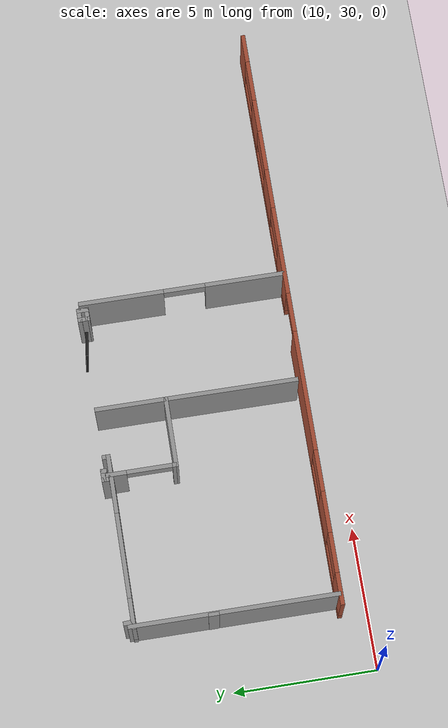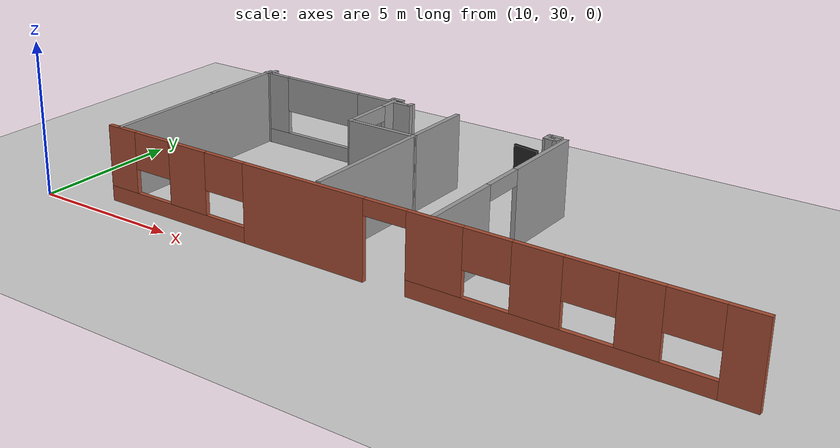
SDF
<sdf version="1.6">
 <world name="default">
  <model name="ground_plane">
   <static>1</static>
   <link name="link">
    <collision name="collision">
     <geometry><plane><normal>0 0 1</normal><size>100 100</size></plane></geometry>
     <surface><friction><ode><mu>100</mu><mu2>50</mu2></ode></friction></surface>
    </collision>
    <visual name="visual">
     <cast_shadows>0</cast_shadows>
     <geometry><plane><normal>0 0 1</normal><size>100 100</size></plane></geometry>
     <material>
      <script><uri>file://media/materials/scripts/gazebo.material</uri><name>Gazebo/Grey</name></script>
     </material>
    </visual>
   </link>
  </model>
  <model name="CVSSP">
   <pose>23.8714 24.094 0 0 -0 0</pose>
   <link name="Wall_17">
    <collision name="Wall_17_Collision">
     <geometry><box><size>7.25 0.15 2.5</size></box></geometry>
     <pose>0 0 1.25 0 -0 0</pose>
    </collision>
    <visual name="Wall_17_Visual">
     <pose>0 0 1.25 0 -0 0</pose>
     <geometry><box><size>7.25 0.15 2.5</size></box></geometry>
     <material>
      <script><uri>file://media/materials/scripts/gazebo.material</uri><name>Gazebo/Grey</name></script>
      <ambient>0.588235 0.588235 0.588235 1</ambient>
     </material>
    </visual>
    <pose>-11.4873 10.485 0 0 0 -1.5708</pose>
   </link>
   <link name="Wall_21">
    <pose>-6.21845 12.8269 0 0 0 -1.57055</pose>
    <visual name="Wall_21_Visual_0">
     <pose>-0.893143 0 1.25 0 -0 0</pose>
     <geometry><box><size>0.719046 0.15 2.5</size></box></geometry>
     <material>
      <script><uri>file://media/materials/scripts/gazebo.material</uri><name>Gazebo/Grey</name></script>
      <ambient>0.588235 0.588235 0.588235 1</ambient>
     </material>
    </visual>
    <collision name="Wall_21_Collision_0">
     <geometry><box><size>0.719046 0.15 2.5</size></box></geometry>
     <pose>-0.893143 0 1.25 0 -0 0</pose>
    </collision>
    <visual name="Wall_21_Visual_1">
     <pose>1.15058 0 1.25 0 -0 0</pose>
     <geometry><box><size>0.204165 0.15 2.5</size></box></geometry>
     <material>
      <script><uri>file://media/materials/scripts/gazebo.material</uri><name>Gazebo/Grey</name></script>
      <ambient>0.588235 0.588235 0.588235 1</ambient>
     </material>
    </visual>
    <collision name="Wall_21_Collision_1">
     <geometry><box><size>0.204165 0.15 2.5</size></box></geometry>
     <pose>1.15058 0 1.25 0 -0 0</pose>
    </collision>
    <visual name="Wall_21_Visual_2">
     <pose>0.257441 0 2.25 0 -0 0</pose>
     <geometry><box><size>1.58212 0.15 0.5</size></box></geometry>
     <material>
      <script><uri>file://media/materials/scripts/gazebo.material</uri><name>Gazebo/Grey</name></script>
      <ambient>0.588235 0.588235 0.588235 1</ambient>
     </material>
    </visual>
    <collision name="Wall_21_Collision_2">
     <geometry><box><size>1.58212 0.15 0.5</size></box></geometry>
     <pose>0.257441 0 2.25 0 -0 0</pose>
    </collision>
   </link>
   <link name="Wall_24">
    <collision name="Wall_24_Collision">
     <geometry><box><size>2.49412 0.15 2.5</size></box></geometry>
     <pose>0 0 1.25 0 -0 0</pose>
    </collision>
    <visual name="Wall_24_Visual">
     <pose>0 0 1.25 0 -0 0</pose>
     <geometry><box><size>2.49412 0.15 2.5</size></box></geometry>
     <material>
      <script><uri>file://media/materials/scripts/gazebo.material</uri><name>Gazebo/Grey</name></script>
      <ambient>0.588235 0.588235 0.588235 1</ambient>
     </material>
    </visual>
    <pose>-5.0461 11.6485 0 0 0 -0.000618</pose>
   </link>
   <link name="Wall_25">
    <collision name="Wall_25_Collision">
     <geometry><box><size>2.54698 0.15 2.5</size></box></geometry>
     <pose>0 0 1.25 0 -0 0</pose>
    </collision>
    <visual name="Wall_25_Visual">
     <pose>0 0 1.25 0 -0 0</pose>
     <geometry><box><size>2.54698 0.15 2.5</size></box></geometry>
     <material>
      <script><uri>file://media/materials/scripts/gazebo.material</uri><name>Gazebo/Grey</name></script>
      <ambient>0.588235 0.588235 0.588235 1</ambient>
     </material>
    </visual>
    <pose>-3.87405 12.8463 0 0 -0 1.5708</pose>
   </link>
   <link name="Wall_27">
    <collision name="Wall_27_Collision">
     <geometry><box><size>4.69046 0.15 2.5</size></box></geometry>
     <pose>0 0 1.25 0 -0 0</pose>
    </collision>
    <visual name="Wall_27_Visual">
     <pose>0 0 1.25 0 -0 0</pose>
     <geometry><box><size>4.69046 0.15 2.5</size></box></geometry>
     <material>
      <script><uri>file://media/materials/scripts/gazebo.material</uri><name>Gazebo/Grey</name></script>
      <ambient>0.588235 0.588235 0.588235 1</ambient>
     </material>
    </visual>
    <pose>-3.88025 9.37755 0 0 0 -1.57353</pose>
   </link>
   <link name="Wall_29">
    <pose>-0.023055 10.5087 0 0 0 -1.5708</pose>
    <visual name="Wall_29_Visual_0">
     <pose>-2.1277 0 1.25 0 -0 0</pose>
     <geometry><box><size>2.99461 0.15 2.5</size></box></geometry>
     <material>
      <script><uri>file://media/materials/scripts/gazebo.material</uri><name>Gazebo/Grey</name></script>
      <ambient>0.588235 0.588235 0.588235 1</ambient>
     </material>
    </visual>
    <collision name="Wall_29_Collision_0">
     <geometry><box><size>2.99461 0.15 2.5</size></box></geometry>
     <pose>-2.1277 0 1.25 0 -0 0</pose>
    </collision>
    <visual name="Wall_29_Visual_1">
     <pose>2.22714 0 1.25 0 -0 0</pose>
     <geometry><box><size>2.79571 0.15 2.5</size></box></geometry>
     <material>
      <script><uri>file://media/materials/scripts/gazebo.material</uri><name>Gazebo/Grey</name></script>
      <ambient>0.588235 0.588235 0.588235 1</ambient>
     </material>
    </visual>
    <collision name="Wall_29_Collision_1">
     <geometry><box><size>2.79571 0.15 2.5</size></box></geometry>
     <pose>2.22714 0 1.25 0 -0 0</pose>
    </collision>
    <visual name="Wall_29_Visual_2">
     <pose>0.099447 0 2.25 0 -0 0</pose>
     <geometry><box><size>1.45968 0.15 0.5</size></box></geometry>
     <material>
      <script><uri>file://media/materials/scripts/gazebo.material</uri><name>Gazebo/Grey</name></script>
      <ambient>0.588235 0.588235 0.588235 1</ambient>
     </material>
    </visual>
    <collision name="Wall_29_Collision_2">
     <geometry><box><size>1.45968 0.15 0.5</size></box></geometry>
     <pose>0.099447 0 2.25 0 -0 0</pose>
    </collision>
   </link>
   <link name="Wall_46">
    <pose>-1.40579 6.86917 0 0 -0 3.14155</pose>
    <visual name="Wall_46_Visual_0">
     <pose>-9.95927 0 1.25 0 -0 0</pose>
     <geometry><box><size>1.03804 0.15 2.5</size></box></geometry>
     <material>
      <script><uri>file://media/materials/scripts/gazebo.material</uri><name>Gazebo/Bricks</name></script>
      <ambient>1 1 1 1</ambient>
     </material>
    </visual>
    <collision name="Wall_46_Collision_0">
     <geometry><box><size>1.03804 0.15 2.5</size></box></geometry>
     <pose>-9.95927 0 1.25 0 -0 0</pose>
    </collision>
    <visual name="Wall_46_Visual_1">
     <pose>2.91124 0 1.25 0 -0 0</pose>
     <geometry><box><size>4.28444 0.15 2.5</size></box></geometry>
     <material>
      <script><uri>file://media/materials/scripts/gazebo.material</uri><name>Gazebo/Bricks</name></script>
      <ambient>1 1 1 1</ambient>
     </material>
    </visual>
    <collision name="Wall_46_Collision_1">
     <geometry><box><size>4.28444 0.15 2.5</size></box></geometry>
     <pose>2.91124 0 1.25 0 -0 0</pose>
    </collision>
    <visual name="Wall_46_Visual_2">
     <pose>-5.03718 0 0.25 0 -0 0</pose>
     <geometry><box><size>8.80612 0.15 0.5</size></box></geometry>
     <material>
      <script><uri>file://media/materials/scripts/gazebo.material</uri><name>Gazebo/Bricks</name></script>
      <ambient>1 1 1 1</ambient>
     </material>
    </visual>
    <collision name="Wall_46_Collision_2">
     <geometry><box><size>8.80612 0.15 0.5</size></box></geometry>
     <pose>-5.03718 0 0.25 0 -0 0</pose>
    </collision>
    <visual name="Wall_46_Visual_3">
     <pose>7.76588 0 0.25 0 -0 0</pose>
     <geometry><box><size>5.42482 0.15 0.5</size></box></geometry>
     <material>
      <script><uri>file://media/materials/scripts/gazebo.material</uri><name>Gazebo/Bricks</name></script>
      <ambient>1 1 1 1</ambient>
     </material>
    </visual>
    <collision name="Wall_46_Collision_3">
     <geometry><box><size>5.42482 0.15 0.5</size></box></geometry>
     <pose>7.76588 0 0.25 0 -0 0</pose>
    </collision>
    <visual name="Wall_46_Visual_4">
     <pose>-7.35036 0 1.5 0 -0 0</pose>
     <geometry><box><size>1.1891 0.15 2</size></box></geometry>
     <material>
      <script><uri>file://media/materials/scripts/gazebo.material</uri><name>Gazebo/Bricks</name></script>
      <ambient>1 1 1 1</ambient>
     </material>
    </visual>
    <collision name="Wall_46_Collision_4">
     <geometry><box><size>1.1891 0.15 2</size></box></geometry>
     <pose>-7.35036 0 1.5 0 -0 0</pose>
    </collision>
    <visual name="Wall_46_Visual_5">
     <pose>-4.55193 0 1.5 0 -0 0</pose>
     <geometry><box><size>1.43988 0.15 2</size></box></geometry>
     <material>
      <script><uri>file://media/materials/scripts/gazebo.material</uri><name>Gazebo/Bricks</name></script>
      <ambient>1 1 1 1</ambient>
     </material>
    </visual>
    <collision name="Wall_46_Collision_5">
     <geometry><box><size>1.43988 0.15 2</size></box></geometry>
     <pose>-4.55193 0 1.5 0 -0 0</pose>
    </collision>
    <visual name="Wall_46_Visual_6">
     <pose>-1.51388 0 1.5 0 -0 0</pose>
     <geometry><box><size>1.75953 0.15 2</size></box></geometry>
     <material>
      <script><uri>file://media/materials/scripts/gazebo.material</uri><name>Gazebo/Bricks</name></script>
      <ambient>1 1 1 1</ambient>
     </material>
    </visual>
    <collision name="Wall_46_Collision_6">
     <geometry><box><size>1.75953 0.15 2</size></box></geometry>
     <pose>-1.51388 0 1.5 0 -0 0</pose>
    </collision>
    <visual name="Wall_46_Visual_7">
     <pose>-1.51388 0 1.5 0 -0 0</pose>
     <geometry><box><size>1.75953 0.15 2</size></box></geometry>
     <material>
      <script><uri>file://media/materials/scripts/gazebo.material</uri><name>Gazebo/Bricks</name></script>
      <ambient>1 1 1 1</ambient>
     </material>
    </visual>
    <collision name="Wall_46_Collision_7">
     <geometry><box><size>1.75953 0.15 2</size></box></geometry>
     <pose>-1.51388 0 1.5 0 -0 0</pose>
    </collision>
    <visual name="Wall_46_Visual_8">
     <pose>7.24439 0 1.5 0 -0 0</pose>
     <geometry><box><size>1.44818 0.15 2</size></box></geometry>
     <material>
      <script><uri>file://media/materials/scripts/gazebo.material</uri><name>Gazebo/Bricks</name></script>
      <ambient>1 1 1 1</ambient>
     </material>
    </visual>
    <collision name="Wall_46_Collision_8">
     <geometry><box><size>1.44818 0.15 2</size></box></geometry>
     <pose>7.24439 0 1.5 0 -0 0</pose>
    </collision>
    <visual name="Wall_46_Visual_9">
     <pose>9.92244 0 1.5 0 -0 0</pose>
     <geometry><box><size>1.1117 0.15 2</size></box></geometry>
     <material>
      <script><uri>file://media/materials/scripts/gazebo.material</uri><name>Gazebo/Bricks</name></script>
      <ambient>1 1 1 1</ambient>
     </material>
    </visual>
    <collision name="Wall_46_Collision_9">
     <geometry><box><size>1.1117 0.15 2</size></box></geometry>
     <pose>9.92244 0 1.5 0 -0 0</pose>
    </collision>
    <visual name="Wall_46_Visual_10">
     <pose>-8.69258 0 1.9 0 -0 0</pose>
     <geometry><box><size>1.49533 0.15 1.2</size></box></geometry>
     <material>
      <script><uri>file://media/materials/scripts/gazebo.material</uri><name>Gazebo/Bricks</name></script>
      <ambient>1 1 1 1</ambient>
     </material>
    </visual>
    <collision name="Wall_46_Collision_10">
     <geometry><box><size>1.49533 0.15 1.2</size></box></geometry>
     <pose>-8.69258 0 1.9 0 -0 0</pose>
    </collision>
    <visual name="Wall_46_Visual_11">
     <pose>5.78688 0 1.9 0 -0 0</pose>
     <geometry><box><size>1.46684 0.15 1.2</size></box></geometry>
     <material>
      <script><uri>file://media/materials/scripts/gazebo.material</uri><name>Gazebo/Bricks</name></script>
      <ambient>1 1 1 1</ambient>
     </material>
    </visual>
    <collision name="Wall_46_Collision_11">
     <geometry><box><size>1.46684 0.15 1.2</size></box></geometry>
     <pose>5.78688 0 1.9 0 -0 0</pose>
    </collision>
    <visual name="Wall_46_Visual_12">
     <pose>-6.01384 0 1.9 0 -0 0</pose>
     <geometry><box><size>1.48394 0.15 1.2</size></box></geometry>
     <material>
      <script><uri>file://media/materials/scripts/gazebo.material</uri><name>Gazebo/Bricks</name></script>
      <ambient>1 1 1 1</ambient>
     </material>
    </visual>
    <collision name="Wall_46_Collision_12">
     <geometry><box><size>1.48394 0.15 1.2</size></box></geometry>
     <pose>-6.01384 0 1.9 0 -0 0</pose>
    </collision>
    <visual name="Wall_46_Visual_13">
     <pose>-3.11282 0 1.9 0 -0 0</pose>
     <geometry><box><size>1.43834 0.15 1.2</size></box></geometry>
     <material>
      <script><uri>file://media/materials/scripts/gazebo.material</uri><name>Gazebo/Bricks</name></script>
      <ambient>1 1 1 1</ambient>
     </material>
    </visual>
    <collision name="Wall_46_Collision_13">
     <geometry><box><size>1.43834 0.15 1.2</size></box></geometry>
     <pose>-3.11282 0 1.9 0 -0 0</pose>
    </collision>
    <visual name="Wall_46_Visual_14">
     <pose>8.66753 0 1.9 0 -0 0</pose>
     <geometry><box><size>1.39811 0.15 1.2</size></box></geometry>
     <material>
      <script><uri>file://media/materials/scripts/gazebo.material</uri><name>Gazebo/Bricks</name></script>
      <ambient>1 1 1 1</ambient>
     </material>
    </visual>
    <collision name="Wall_46_Collision_14">
     <geometry><box><size>1.39811 0.15 1.2</size></box></geometry>
     <pose>8.66753 0 1.9 0 -0 0</pose>
    </collision>
    <visual name="Wall_46_Visual_15">
     <pose>0.067453 0 2.25 0 -0 0</pose>
     <geometry><box><size>1.40314 0.15 0.5</size></box></geometry>
     <material>
      <script><uri>file://media/materials/scripts/gazebo.material</uri><name>Gazebo/Bricks</name></script>
      <ambient>1 1 1 1</ambient>
     </material>
    </visual>
    <collision name="Wall_46_Collision_15">
     <geometry><box><size>1.40314 0.15 0.5</size></box></geometry>
     <pose>0.067453 0 2.25 0 -0 0</pose>
    </collision>
    <visual name="Wall_46_Visual_16">
     <pose>0.067453 0 2.25 0 -0 0</pose>
     <geometry><box><size>1.40314 0.15 0.5</size></box></geometry>
     <material>
      <script><uri>file://media/materials/scripts/gazebo.material</uri><name>Gazebo/Bricks</name></script>
      <ambient>1 1 1 1</ambient>
     </material>
    </visual>
    <collision name="Wall_46_Collision_16">
     <geometry><box><size>1.40314 0.15 0.5</size></box></geometry>
     <pose>0.067453 0 2.25 0 -0 0</pose>
    </collision>
   </link>
   <link name="Wall_619">
    <collision name="Wall_619_Collision">
     <geometry><box><size>0.491176 0.15 2.5</size></box></geometry>
     <pose>0 0 1.25 0 -0 0</pose>
    </collision>
    <visual name="Wall_619_Visual">
     <pose>0 0 1.25 0 -0 0</pose>
     <geometry><box><size>0.491176 0.15 2.5</size></box></geometry>
     <material>
      <script><uri>file://media/materials/scripts/gazebo.material</uri><name>Gazebo/Grey</name></script>
      <ambient>1 1 1 1</ambient>
     </material>
    </visual>
    <pose>-0.431731 14.1578 0 0 -0 0</pose>
   </link>
   <link name="Wall_620">
    <collision name="Wall_620_Collision">
     <geometry><box><size>0.421785 0.15 2.5</size></box></geometry>
     <pose>0 0 1.25 0 -0 0</pose>
    </collision>
    <visual name="Wall_620_Visual">
     <pose>0 0 1.25 0 -0 0</pose>
     <geometry><box><size>0.421785 0.15 2.5</size></box></geometry>
     <material>
      <script><uri>file://media/materials/scripts/gazebo.material</uri><name>Gazebo/Grey</name></script>
      <ambient>1 1 1 1</ambient>
     </material>
    </visual>
    <pose>-0.261143 14.0219 0 0 0 -1.5708</pose>
   </link>
   <link name="Wall_621">
    <collision name="Wall_621_Collision">
     <geometry><box><size>0.479611 0.15 2.5</size></box></geometry>
     <pose>0 0 1.25 0 -0 0</pose>
    </collision>
    <visual name="Wall_621_Visual">
     <pose>0 0 1.25 0 -0 0</pose>
     <geometry><box><size>0.479611 0.15 2.5</size></box></geometry>
     <material>
      <script><uri>file://media/materials/scripts/gazebo.material</uri><name>Gazebo/Grey</name></script>
      <ambient>1 1 1 1</ambient>
     </material>
    </visual>
    <pose>-0.425949 13.8861 0 0 -0 3.14159</pose>
   </link>
   <link name="Wall_622">
    <collision name="Wall_622_Collision">
     <geometry><box><size>0.421846 0.15 2.5</size></box></geometry>
     <pose>0 0 1.25 0 -0 0</pose>
    </collision>
    <visual name="Wall_622_Visual">
     <pose>0 0 1.25 0 -0 0</pose>
     <geometry><box><size>0.421846 0.15 2.5</size></box></geometry>
     <material>
      <script><uri>file://media/materials/scripts/gazebo.material</uri><name>Gazebo/Grey</name></script>
      <ambient>1 1 1 1</ambient>
     </material>
    </visual>
    <pose>-0.593646 14.0219 0 0 -0 1.59207</pose>
   </link>
   <link name="Wall_624">
    <collision name="Wall_624_Collision">
     <geometry><box><size>0.291595 0.15 2.5</size></box></geometry>
     <pose>0 0 1.25 0 -0 0</pose>
    </collision>
    <visual name="Wall_624_Visual">
     <pose>0 0 1.25 0 -0 0</pose>
     <geometry><box><size>0.291595 0.15 2.5</size></box></geometry>
     <material>
      <script><uri>file://media/materials/scripts/gazebo.material</uri><name>Gazebo/Grey</name></script>
      <ambient>1 1 1 1</ambient>
     </material>
    </visual>
    <pose>-5.57863 13.9687 0 0 0 -1.5708</pose>
   </link>
   <link name="Wall_625">
    <pose>-8.55211 13.8979 0 0 -0 3.14159</pose>
    <visual name="Wall_625_Visual_0">
     <pose>-2.01383 0 1.25 0 -0 0</pose>
     <geometry><box><size>2.06931 0.15 2.5</size></box></geometry>
     <material>
      <script><uri>file://media/materials/scripts/gazebo.material</uri><name>Gazebo/Grey</name></script>
      <ambient>1 1 1 1</ambient>
     </material>
    </visual>
    <collision name="Wall_625_Collision_0">
     <geometry><box><size>2.06931 0.15 2.5</size></box></geometry>
     <pose>-2.01383 0 1.25 0 -0 0</pose>
    </collision>
    <visual name="Wall_625_Visual_1">
     <pose>1.03465 0 0.25 0 -0 0</pose>
     <geometry><box><size>4.02766 0.15 0.5</size></box></geometry>
     <material>
      <script><uri>file://media/materials/scripts/gazebo.material</uri><name>Gazebo/Grey</name></script>
      <ambient>1 1 1 1</ambient>
     </material>
    </visual>
    <collision name="Wall_625_Collision_1">
     <geometry><box><size>4.02766 0.15 0.5</size></box></geometry>
     <pose>1.03465 0 0.25 0 -0 0</pose>
    </collision>
    <visual name="Wall_625_Visual_2">
     <pose>2.51124 0 1.5 0 -0 0</pose>
     <geometry><box><size>1.07449 0.15 2</size></box></geometry>
     <material>
      <script><uri>file://media/materials/scripts/gazebo.material</uri><name>Gazebo/Grey</name></script>
      <ambient>1 1 1 1</ambient>
     </material>
    </visual>
    <collision name="Wall_625_Collision_2">
     <geometry><box><size>1.07449 0.15 2</size></box></geometry>
     <pose>2.51124 0 1.5 0 -0 0</pose>
    </collision>
    <visual name="Wall_625_Visual_3">
     <pose>0.497408 0 1.9 0 -0 0</pose>
     <geometry><box><size>2.95317 0.15 1.2</size></box></geometry>
     <material>
      <script><uri>file://media/materials/scripts/gazebo.material</uri><name>Gazebo/Grey</name></script>
      <ambient>1 1 1 1</ambient>
     </material>
    </visual>
    <collision name="Wall_625_Collision_3">
     <geometry><box><size>2.95317 0.15 1.2</size></box></geometry>
     <pose>0.497408 0 1.9 0 -0 0</pose>
    </collision>
   </link>
   <link name="Wall_628">
    <collision name="Wall_628_Collision">
     <geometry><box><size>0.251643 0.15 2.5</size></box></geometry>
     <pose>0 0 1.25 0 -0 0</pose>
    </collision>
    <visual name="Wall_628_Visual">
     <pose>0 0 1.25 0 -0 0</pose>
     <geometry><box><size>0.251643 0.15 2.5</size></box></geometry>
     <material>
      <script><uri>file://media/materials/scripts/gazebo.material</uri><name>Gazebo/Grey</name></script>
      <ambient>1 1 1 1</ambient>
     </material>
    </visual>
    <pose>-6.3574 14.1103 0 0 -0 1.5708</pose>
   </link>
   <link name="Wall_629">
    <collision name="Wall_629_Collision">
     <geometry><box><size>0.453417 0.15 2.5</size></box></geometry>
     <pose>0 0 1.25 0 -0 0</pose>
    </collision>
    <visual name="Wall_629_Visual">
     <pose>0 0 1.25 0 -0 0</pose>
     <geometry><box><size>0.453417 0.15 2.5</size></box></geometry>
     <material>
      <script><uri>file://media/materials/scripts/gazebo.material</uri><name>Gazebo/Grey</name></script>
      <ambient>1 1 1 1</ambient>
     </material>
    </visual>
    <pose>-6.20569 14.1608 0 0 -0 0</pose>
   </link>
   <link name="Wall_630">
    <collision name="Wall_630_Collision">
     <geometry><box><size>0.220797 0.15 2.5</size></box></geometry>
     <pose>0 0 1.25 0 -0 0</pose>
    </collision>
    <visual name="Wall_630_Visual">
     <pose>0 0 1.25 0 -0 0</pose>
     <geometry><box><size>0.220797 0.15 2.5</size></box></geometry>
     <material>
      <script><uri>file://media/materials/scripts/gazebo.material</uri><name>Gazebo/Grey</name></script>
      <ambient>1 1 1 1</ambient>
     </material>
    </visual>
    <pose>-6.05398 14.1255 0 0 0 -1.5708</pose>
   </link>
   <link name="Wall_634">
    <collision name="Wall_634_Collision">
     <geometry><box><size>0.413156 0.15 2.5</size></box></geometry>
     <pose>0 0 1.25 0 -0 0</pose>
    </collision>
    <visual name="Wall_634_Visual">
     <pose>0 0 1.25 0 -0 0</pose>
     <geometry><box><size>0.413156 0.15 2.5</size></box></geometry>
     <material>
      <script><uri>file://media/materials/scripts/gazebo.material</uri><name>Gazebo/Grey</name></script>
      <ambient>1 1 1 1</ambient>
     </material>
    </visual>
    <pose>-11.3486 14.0294 0 0 0 -1.53235</pose>
   </link>
   <link name="Wall_694">
    <collision name="Wall_694_Collision">
     <geometry><box><size>0.370527 0.15 2.5</size></box></geometry>
     <pose>0 0 1.25 0 -0 0</pose>
    </collision>
    <visual name="Wall_694_Visual">
     <pose>0 0 1.25 0 -0 0</pose>
     <geometry><box><size>0.370527 0.15 2.5</size></box></geometry>
     <material>
      <script><uri>file://media/materials/scripts/gazebo.material</uri><name>Gazebo/Grey</name></script>
      <ambient>1 1 1 1</ambient>
     </material>
    </visual>
    <pose>-11.4967 11.1895 0 0 0 -1.5708</pose>
   </link>
   <static>1</static>
  </model>
  <model name="metal_door_clone">
   <link name="link">
    <inertial>
     <mass>1</mass>
     <inertia>
      <ixx>0.166667</ixx>
      <ixy>0</ixy>
      <ixz>0</ixz>
      <iyy>0.166667</iyy>
      <iyz>0</iyz>
      <izz>0.166667</izz>
     </inertia>
    </inertial>
    <gravity>0</gravity>
    <visual name="visual">
     <geometry><box><size>0.100297 0.870347 1.94787</size></box></geometry>
     <material>
      <script><name>Gazebo/Black</name><uri>file://media/materials/scripts/gazebo.material</uri></script>
      <shader type="pixel"><normal_map>__default__</normal_map></shader>
      <ambient>0.01 0.001 0.001 1</ambient>
      <diffuse>0.7 0.7 0.7 1</diffuse>
      <specular>0.01 0.01 0.01 1</specular>
      <emissive>0 0 0 1</emissive>
     </material>
    </visual>
    <collision name="collision">
     <geometry><box><size>0.100297 0.870347 1.94787</size></box></geometry>
     <surface>
      <friction>
       <ode><mu>1</mu><mu2>1</mu2><fdir1>0 0 0</fdir1><slip1>0</slip1><slip2>0</slip2></ode>
       <torsional>
        <coefficient>1</coefficient>
        <patch_radius>0</patch_radius>
        <surface_radius>0</surface_radius>
        <use_patch_radius>1</use_patch_radius>
        <ode><slip>0</slip></ode>
       </torsional>
      </friction>
      <bounce><restitution_coefficient>0</restitution_coefficient><threshold>1e+06</threshold></bounce>
      <contact>
       <collide_without_contact>0</collide_without_contact>
       <collide_without_contact_bitmask>1</collide_without_contact_bitmask>
       <collide_bitmask>1</collide_bitmask>
       <ode>
        <soft_cfm>0</soft_cfm>
        <soft_erp>0.2</soft_erp>
        <kp>1e+13</kp>
        <kd>1</kd>
        <max_vel>0.01</max_vel>
        <min_depth>0</min_depth>
       </ode>
       <bullet>
        <split_impulse>1</split_impulse>
        <split_impulse_penetration_threshold>-0.01</split_impulse_penetration_threshold>
        <soft_cfm>0</soft_cfm>
        <soft_erp>0.2</soft_erp>
        <kp>1e+13</kp>
        <kd>1</kd>
       </bullet>
      </contact>
     </surface>
    </collision>
   </link>
   <static>0</static>
   <pose>22.5365 38.1855 0.999545 -0.013511 0.051432 -1.69344</pose>
  </model>
 </world>
</sdf>
